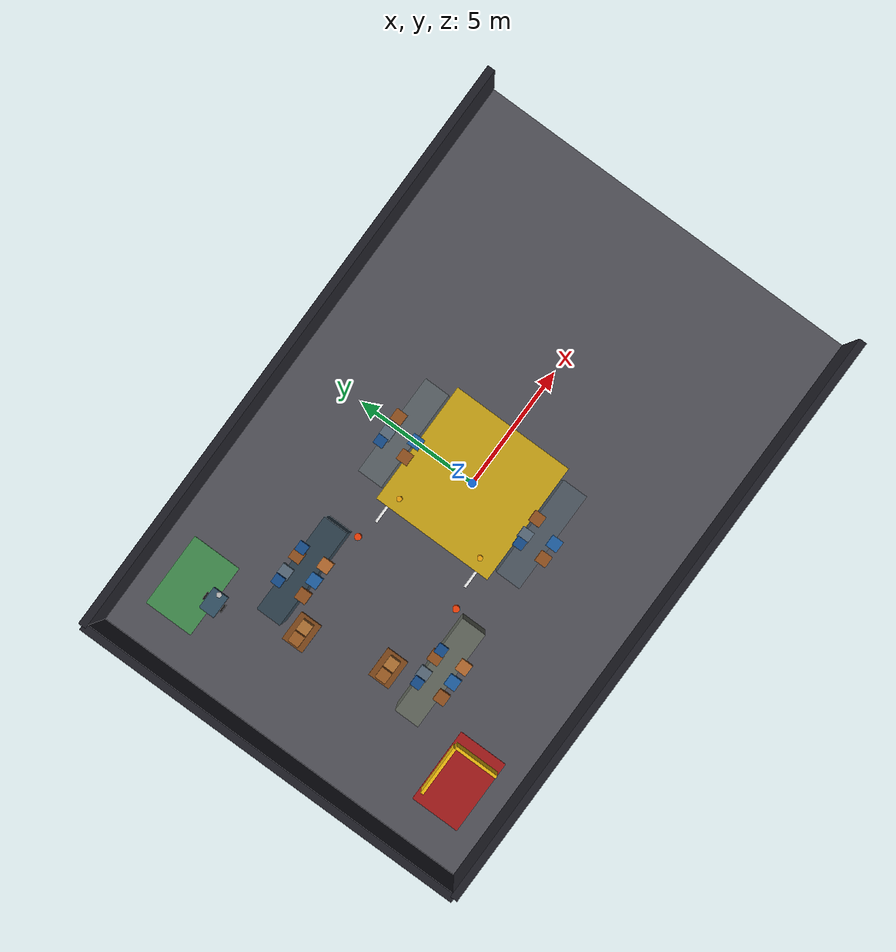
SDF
<sdf version="1.9">
 <world name="synaids_advanced_warehouse">
  <model name="warehouse_floor">
   <static>true</static>
   <pose>0 0 -0.05 0 0 0</pose>
   <link name="link">
    <collision name="collision"><geometry><box><size>24 16 0.1</size></box></geometry></collision>
    <visual name="visual">
     <geometry><box><size>24 16 0.1</size></box></geometry>
     <material>
      <ambient>0.20 0.20 0.22 1</ambient>
      <diffuse>0.32 0.32 0.35 1</diffuse>
      <specular>0.15 0.15 0.15 1</specular>
     </material>
    </visual>
   </link>
  </model>
  <model name="wall_north">
   <static>true</static>
   <pose>0 8 1.5 0 0 0</pose>
   <link name="link">
    <collision name="collision"><geometry><box><size>24 0.3 3</size></box></geometry></collision>
    <visual name="visual">
     <geometry><box><size>24 0.3 3</size></box></geometry>
     <material><ambient>0.08 0.08 0.10 1</ambient><diffuse>0.12 0.12 0.15 1</diffuse></material>
    </visual>
   </link>
  </model>
  <model name="wall_south">
   <static>true</static>
   <pose>0 -8 1.5 0 0 0</pose>
   <link name="link">
    <collision name="collision"><geometry><box><size>24 0.3 3</size></box></geometry></collision>
    <visual name="visual">
     <geometry><box><size>24 0.3 3</size></box></geometry>
     <material><ambient>0.08 0.08 0.10 1</ambient><diffuse>0.12 0.12 0.15 1</diffuse></material>
    </visual>
   </link>
  </model>
  <model name="wall_west">
   <static>true</static>
   <pose>-12 0 1.5 0 0 0</pose>
   <link name="link">
    <collision name="collision"><geometry><box><size>0.3 16 3</size></box></geometry></collision>
    <visual name="visual">
     <geometry><box><size>0.3 16 3</size></box></geometry>
     <material><ambient>0.08 0.08 0.10 1</ambient><diffuse>0.12 0.12 0.15 1</diffuse></material>
    </visual>
   </link>
  </model>
  <model name="shelf_1">
   <static>true</static>
   <pose>-6 3 1.2 0 0 0</pose>
   <link name="link">
    <collision name="collision"><geometry><box><size>4 1.0 2.4</size></box></geometry></collision>
    <visual name="visual">
     <geometry><box><size>4 1.0 2.4</size></box></geometry>
     <material><ambient>0.08 0.12 0.16 1</ambient><diffuse>0.18 0.25 0.30 1</diffuse></material>
    </visual>
   </link>
  </model>
  <model name="shelf_2">
   <static>true</static>
   <pose>0 3 1.2 0 0 0</pose>
   <link name="link">
    <collision name="collision"><geometry><box><size>4 1.0 2.4</size></box></geometry></collision>
    <visual name="visual">
     <geometry><box><size>4 1.0 2.4</size></box></geometry>
     <material><ambient>0.18 0.18 0.18 1</ambient><diffuse>0.35 0.38 0.40 1</diffuse></material>
    </visual>
   </link>
  </model>
  <model name="shelf_4">
   <static>true</static>
   <pose>-6 -3 1.2 0 0 0</pose>
   <link name="link">
    <collision name="collision"><geometry><box><size>4 1.0 2.4</size></box></geometry></collision>
    <visual name="visual">
     <geometry><box><size>4 1.0 2.4</size></box></geometry>
     <material><ambient>0.20 0.20 0.18 1</ambient><diffuse>0.38 0.40 0.36 1</diffuse></material>
    </visual>
   </link>
  </model>
  <model name="shelf_5">
   <static>true</static>
   <pose>0 -3 1.2 0 0 0</pose>
   <link name="link">
    <collision name="collision"><geometry><box><size>4 1.0 2.4</size></box></geometry></collision>
    <visual name="visual">
     <geometry><box><size>4 1.0 2.4</size></box></geometry>
     <material><ambient>0.16 0.18 0.20 1</ambient><diffuse>0.30 0.34 0.38 1</diffuse></material>
    </visual>
   </link>
  </model>
  <model name="pickup_zone">
   <static>true</static>
   <pose>-9 6 0.02 0 0 0</pose>
   <link name="link">
    <visual name="visual">
     <geometry><box><size>3 2 0.04</size></box></geometry>
     <material><ambient>0.08 0.25 0.10 1</ambient><diffuse>0.25 0.55 0.30 1</diffuse></material>
    </visual>
   </link>
  </model>
  <model name="restricted_zone">
   <static>true</static>
   <pose>-9 -6 0.02 0 0 0</pose>
   <link name="link">
    <visual name="visual">
     <geometry><box><size>3 2 0.04</size></box></geometry>
     <material><ambient>0.35 0.04 0.04 1</ambient><diffuse>0.65 0.10 0.10 1</diffuse></material>
    </visual>
   </link>
  </model>
  <model name="central_intersection">
   <static>true</static>
   <pose>0 0 0.025 0 0 0</pose>
   <link name="link">
    <visual name="visual">
     <geometry><box><size>5 5 0.05</size></box></geometry>
     <material><ambient>0.45 0.38 0.03 1</ambient><diffuse>0.80 0.65 0.08 1</diffuse></material>
    </visual>
   </link>
  </model>
  <model name="R1">
   <pose>-9 5 0.25 0 0 0</pose>
   <link name="base_link">
    <inertial><mass>12</mass><inertia><ixx>0.5</ixx><iyy>0.5</iyy><izz>0.5</izz></inertia></inertial>
    <collision name="base_collision"><geometry><box><size>0.9 0.65 0.25</size></box></geometry></collision>
    <visual name="base_visual">
     <geometry><box><size>0.9 0.65 0.25</size></box></geometry>
     <material><ambient>0.10 0.16 0.20 1</ambient><diffuse>0.20 0.32 0.40 1</diffuse></material>
    </visual>
   </link>
   <link name="left_wheel">
    <pose>0 0.38 -0.12 1.5708 0 0</pose>
    <inertial><mass>1</mass><inertia><ixx>0.02</ixx><iyy>0.02</iyy><izz>0.02</izz></inertia></inertial>
    <collision name="collision">
     <geometry><cylinder><radius>0.16</radius><length>0.08</length></cylinder></geometry>
    </collision>
    <visual name="visual">
     <geometry><cylinder><radius>0.16</radius><length>0.08</length></cylinder></geometry>
     <material><ambient>0.03 0.03 0.03 1</ambient><diffuse>0.08 0.08 0.08 1</diffuse></material>
    </visual>
   </link>
   <link name="right_wheel">
    <pose>0 -0.38 -0.12 1.5708 0 0</pose>
    <inertial><mass>1</mass><inertia><ixx>0.02</ixx><iyy>0.02</iyy><izz>0.02</izz></inertia></inertial>
    <collision name="collision">
     <geometry><cylinder><radius>0.16</radius><length>0.08</length></cylinder></geometry>
    </collision>
    <visual name="visual">
     <geometry><cylinder><radius>0.16</radius><length>0.08</length></cylinder></geometry>
     <material><ambient>0.03 0.03 0.03 1</ambient><diffuse>0.08 0.08 0.08 1</diffuse></material>
    </visual>
   </link>
   <link name="sensor">
    <pose>0.35 0 0.18 0 0 0</pose>
    <visual name="visual">
     <geometry><cylinder><radius>0.10</radius><length>0.08</length></cylinder></geometry>
     <material><ambient>0.65 0.65 0.65 1</ambient><diffuse>0.75 0.75 0.75 1</diffuse></material>
    </visual>
   </link>
   <plugin filename="gz-sim-diff-drive-system" name="gz::sim::systems::DiffDrive">
    <left_joint>left_wheel_joint</left_joint>
    <right_joint>right_wheel_joint</right_joint>
    <wheel_separation>0.76</wheel_separation>
    <wheel_radius>0.16</wheel_radius>
    <topic>/R1/cmd_vel</topic>
    <odom_topic>/R1/odom</odom_topic>
    <frame_id>odom</frame_id>
    <child_frame_id>base_link</child_frame_id>
   </plugin>
   <link name="lidar">
    <pose>0 0 0.35 0 0 0</pose>
    <sensor name="lidar_sensor" type="gpu_lidar">
     <topic>/R1/scan</topic>
     <update_rate>10</update_rate>
     <lidar>
      <scan>
       <horizontal>
        <samples>360</samples>
        <resolution>1</resolution>
        <min_angle>-3.14159</min_angle>
        <max_angle>3.14159</max_angle>
       </horizontal>
      </scan>
      <range><min>0.12</min><max>12</max><resolution>0.01</resolution></range>
     </lidar>
    </sensor>
   </link>
   <joint name="left_wheel_joint" type="revolute">
    <parent>base_link</parent>
    <child>left_wheel</child>
    <axis><xyz>0 1 0</xyz></axis>
   </joint>
   <joint name="right_wheel_joint" type="revolute">
    <parent>base_link</parent>
    <child>right_wheel</child>
    <axis><xyz>0 1 0</xyz></axis>
   </joint>
  </model>
  <model name="inventory_0">
   <static>true</static>
   <pose>-6.65 2.45 2.45 0 0 0</pose>
   <link name="link">
    <collision name="collision"><geometry><box><size>0.45 0.45 0.45</size></box></geometry></collision>
    <visual name="visual">
     <geometry><box><size>0.45 0.45 0.45</size></box></geometry>
     <material><ambient>0.58 0.32 0.12 1</ambient><diffuse>0.58 0.32 0.12 1</diffuse></material>
    </visual>
   </link>
  </model>
  <model name="inventory_1">
   <static>true</static>
   <pose>-6.0 2.45 2.45 0 0 0</pose>
   <link name="link">
    <collision name="collision"><geometry><box><size>0.45 0.45 0.45</size></box></geometry></collision>
    <visual name="visual">
     <geometry><box><size>0.45 0.45 0.45</size></box></geometry>
     <material><ambient>0.12 0.38 0.65 1</ambient><diffuse>0.12 0.38 0.65 1</diffuse></material>
    </visual>
   </link>
  </model>
  <model name="inventory_2">
   <static>true</static>
   <pose>-5.35 2.45 2.45 0 0 0</pose>
   <link name="link">
    <collision name="collision"><geometry><box><size>0.45 0.45 0.45</size></box></geometry></collision>
    <visual name="visual">
     <geometry><box><size>0.45 0.45 0.45</size></box></geometry>
     <material><ambient>0.72 0.42 0.18 1</ambient><diffuse>0.72 0.42 0.18 1</diffuse></material>
    </visual>
   </link>
  </model>
  <model name="inventory_3">
   <static>true</static>
   <pose>-6.35 3.45 2.45 0 0 0</pose>
   <link name="link">
    <collision name="collision"><geometry><box><size>0.45 0.45 0.45</size></box></geometry></collision>
    <visual name="visual">
     <geometry><box><size>0.45 0.45 0.45</size></box></geometry>
     <material><ambient>0.35 0.42 0.48 1</ambient><diffuse>0.35 0.42 0.48 1</diffuse></material>
    </visual>
   </link>
  </model>
  <model name="inventory_4">
   <static>true</static>
   <pose>-5.65 3.45 2.45 0 0 0</pose>
   <link name="link">
    <collision name="collision"><geometry><box><size>0.45 0.45 0.45</size></box></geometry></collision>
    <visual name="visual">
     <geometry><box><size>0.45 0.45 0.45</size></box></geometry>
     <material><ambient>0.58 0.32 0.12 1</ambient><diffuse>0.58 0.32 0.12 1</diffuse></material>
    </visual>
   </link>
  </model>
  <model name="bin_5">
   <static>true</static>
   <pose>-6.7 3.45 2.85 0 0 0</pose>
   <link name="link">
    <collision name="collision"><geometry><box><size>0.38 0.38 0.32</size></box></geometry></collision>
    <visual name="visual">
     <geometry><box><size>0.38 0.38 0.32</size></box></geometry>
     <material><ambient>0.08 0.30 0.55 1</ambient><diffuse>0.08 0.30 0.55 1</diffuse></material>
    </visual>
   </link>
  </model>
  <model name="bin_6">
   <static>true</static>
   <pose>-5.3 3.45 2.85 0 0 0</pose>
   <link name="link">
    <collision name="collision"><geometry><box><size>0.38 0.38 0.32</size></box></geometry></collision>
    <visual name="visual">
     <geometry><box><size>0.38 0.38 0.32</size></box></geometry>
     <material><ambient>0.08 0.30 0.55 1</ambient><diffuse>0.08 0.30 0.55 1</diffuse></material>
    </visual>
   </link>
  </model>
  <model name="inventory_7">
   <static>true</static>
   <pose>-0.65 2.45 2.45 0 0 0</pose>
   <link name="link">
    <collision name="collision"><geometry><box><size>0.45 0.45 0.45</size></box></geometry></collision>
    <visual name="visual">
     <geometry><box><size>0.45 0.45 0.45</size></box></geometry>
     <material><ambient>0.58 0.32 0.12 1</ambient><diffuse>0.58 0.32 0.12 1</diffuse></material>
    </visual>
   </link>
  </model>
  <model name="inventory_8">
   <static>true</static>
   <pose>0.0 2.45 2.45 0 0 0</pose>
   <link name="link">
    <collision name="collision"><geometry><box><size>0.45 0.45 0.45</size></box></geometry></collision>
    <visual name="visual">
     <geometry><box><size>0.45 0.45 0.45</size></box></geometry>
     <material><ambient>0.12 0.38 0.65 1</ambient><diffuse>0.12 0.38 0.65 1</diffuse></material>
    </visual>
   </link>
  </model>
  <model name="inventory_10">
   <static>true</static>
   <pose>-0.35 3.45 2.45 0 0 0</pose>
   <link name="link">
    <collision name="collision"><geometry><box><size>0.45 0.45 0.45</size></box></geometry></collision>
    <visual name="visual">
     <geometry><box><size>0.45 0.45 0.45</size></box></geometry>
     <material><ambient>0.35 0.42 0.48 1</ambient><diffuse>0.35 0.42 0.48 1</diffuse></material>
    </visual>
   </link>
  </model>
  <model name="inventory_11">
   <static>true</static>
   <pose>0.35 3.45 2.45 0 0 0</pose>
   <link name="link">
    <collision name="collision"><geometry><box><size>0.45 0.45 0.45</size></box></geometry></collision>
    <visual name="visual">
     <geometry><box><size>0.45 0.45 0.45</size></box></geometry>
     <material><ambient>0.58 0.32 0.12 1</ambient><diffuse>0.58 0.32 0.12 1</diffuse></material>
    </visual>
   </link>
  </model>
  <model name="bin_12">
   <static>true</static>
   <pose>-0.7 3.45 2.85 0 0 0</pose>
   <link name="link">
    <collision name="collision"><geometry><box><size>0.38 0.38 0.32</size></box></geometry></collision>
    <visual name="visual">
     <geometry><box><size>0.38 0.38 0.32</size></box></geometry>
     <material><ambient>0.08 0.30 0.55 1</ambient><diffuse>0.08 0.30 0.55 1</diffuse></material>
    </visual>
   </link>
  </model>
  <model name="inventory_21">
   <static>true</static>
   <pose>-6.65 -3.55 2.45 0 0 0</pose>
   <link name="link">
    <collision name="collision"><geometry><box><size>0.45 0.45 0.45</size></box></geometry></collision>
    <visual name="visual">
     <geometry><box><size>0.45 0.45 0.45</size></box></geometry>
     <material><ambient>0.58 0.32 0.12 1</ambient><diffuse>0.58 0.32 0.12 1</diffuse></material>
    </visual>
   </link>
  </model>
  <model name="inventory_22">
   <static>true</static>
   <pose>-6.0 -3.55 2.45 0 0 0</pose>
   <link name="link">
    <collision name="collision"><geometry><box><size>0.45 0.45 0.45</size></box></geometry></collision>
    <visual name="visual">
     <geometry><box><size>0.45 0.45 0.45</size></box></geometry>
     <material><ambient>0.12 0.38 0.65 1</ambient><diffuse>0.12 0.38 0.65 1</diffuse></material>
    </visual>
   </link>
  </model>
  <model name="inventory_23">
   <static>true</static>
   <pose>-5.35 -3.55 2.45 0 0 0</pose>
   <link name="link">
    <collision name="collision"><geometry><box><size>0.45 0.45 0.45</size></box></geometry></collision>
    <visual name="visual">
     <geometry><box><size>0.45 0.45 0.45</size></box></geometry>
     <material><ambient>0.72 0.42 0.18 1</ambient><diffuse>0.72 0.42 0.18 1</diffuse></material>
    </visual>
   </link>
  </model>
  <model name="inventory_24">
   <static>true</static>
   <pose>-6.35 -2.55 2.45 0 0 0</pose>
   <link name="link">
    <collision name="collision"><geometry><box><size>0.45 0.45 0.45</size></box></geometry></collision>
    <visual name="visual">
     <geometry><box><size>0.45 0.45 0.45</size></box></geometry>
     <material><ambient>0.35 0.42 0.48 1</ambient><diffuse>0.35 0.42 0.48 1</diffuse></material>
    </visual>
   </link>
  </model>
  <model name="inventory_25">
   <static>true</static>
   <pose>-5.65 -2.55 2.45 0 0 0</pose>
   <link name="link">
    <collision name="collision"><geometry><box><size>0.45 0.45 0.45</size></box></geometry></collision>
    <visual name="visual">
     <geometry><box><size>0.45 0.45 0.45</size></box></geometry>
     <material><ambient>0.58 0.32 0.12 1</ambient><diffuse>0.58 0.32 0.12 1</diffuse></material>
    </visual>
   </link>
  </model>
  <model name="bin_26">
   <static>true</static>
   <pose>-6.7 -2.55 2.85 0 0 0</pose>
   <link name="link">
    <collision name="collision"><geometry><box><size>0.38 0.38 0.32</size></box></geometry></collision>
    <visual name="visual">
     <geometry><box><size>0.38 0.38 0.32</size></box></geometry>
     <material><ambient>0.08 0.30 0.55 1</ambient><diffuse>0.08 0.30 0.55 1</diffuse></material>
    </visual>
   </link>
  </model>
  <model name="bin_27">
   <static>true</static>
   <pose>-5.3 -2.55 2.85 0 0 0</pose>
   <link name="link">
    <collision name="collision"><geometry><box><size>0.38 0.38 0.32</size></box></geometry></collision>
    <visual name="visual">
     <geometry><box><size>0.38 0.38 0.32</size></box></geometry>
     <material><ambient>0.08 0.30 0.55 1</ambient><diffuse>0.08 0.30 0.55 1</diffuse></material>
    </visual>
   </link>
  </model>
  <model name="inventory_28">
   <static>true</static>
   <pose>-0.65 -3.55 2.45 0 0 0</pose>
   <link name="link">
    <collision name="collision"><geometry><box><size>0.45 0.45 0.45</size></box></geometry></collision>
    <visual name="visual">
     <geometry><box><size>0.45 0.45 0.45</size></box></geometry>
     <material><ambient>0.58 0.32 0.12 1</ambient><diffuse>0.58 0.32 0.12 1</diffuse></material>
    </visual>
   </link>
  </model>
  <model name="inventory_29">
   <static>true</static>
   <pose>0.0 -3.55 2.45 0 0 0</pose>
   <link name="link">
    <collision name="collision"><geometry><box><size>0.45 0.45 0.45</size></box></geometry></collision>
    <visual name="visual">
     <geometry><box><size>0.45 0.45 0.45</size></box></geometry>
     <material><ambient>0.12 0.38 0.65 1</ambient><diffuse>0.12 0.38 0.65 1</diffuse></material>
    </visual>
   </link>
  </model>
  <model name="inventory_31">
   <static>true</static>
   <pose>-0.35 -2.55 2.45 0 0 0</pose>
   <link name="link">
    <collision name="collision"><geometry><box><size>0.45 0.45 0.45</size></box></geometry></collision>
    <visual name="visual">
     <geometry><box><size>0.45 0.45 0.45</size></box></geometry>
     <material><ambient>0.35 0.42 0.48 1</ambient><diffuse>0.35 0.42 0.48 1</diffuse></material>
    </visual>
   </link>
  </model>
  <model name="inventory_32">
   <static>true</static>
   <pose>0.35 -2.55 2.45 0 0 0</pose>
   <link name="link">
    <collision name="collision"><geometry><box><size>0.45 0.45 0.45</size></box></geometry></collision>
    <visual name="visual">
     <geometry><box><size>0.45 0.45 0.45</size></box></geometry>
     <material><ambient>0.58 0.32 0.12 1</ambient><diffuse>0.58 0.32 0.12 1</diffuse></material>
    </visual>
   </link>
  </model>
  <model name="bin_33">
   <static>true</static>
   <pose>-0.7 -2.55 2.85 0 0 0</pose>
   <link name="link">
    <collision name="collision"><geometry><box><size>0.38 0.38 0.32</size></box></geometry></collision>
    <visual name="visual">
     <geometry><box><size>0.38 0.38 0.32</size></box></geometry>
     <material><ambient>0.08 0.30 0.55 1</ambient><diffuse>0.08 0.30 0.55 1</diffuse></material>
    </visual>
   </link>
  </model>
  <model name="pallet_0">
   <static>true</static>
   <pose>-8.0 1.8 0.1 0 0 0</pose>
   <link name="link">
    <collision name="collision"><geometry><box><size>1.2 0.9 0.2</size></box></geometry></collision>
    <visual name="visual">
     <geometry><box><size>1.2 0.9 0.2</size></box></geometry>
     <material><ambient>0.50 0.28 0.10 1</ambient><diffuse>0.50 0.28 0.10 1</diffuse></material>
    </visual>
   </link>
  </model>
  <model name="pallet_box_0_a">
   <static>true</static>
   <pose>-8.25 1.8 0.45 0 0 0</pose>
   <link name="link">
    <collision name="collision"><geometry><box><size>0.45 0.45 0.55</size></box></geometry></collision>
    <visual name="visual">
     <geometry><box><size>0.45 0.45 0.55</size></box></geometry>
     <material><ambient>0.63 0.37 0.14 1</ambient><diffuse>0.63 0.37 0.14 1</diffuse></material>
    </visual>
   </link>
  </model>
  <model name="pallet_box_0_b">
   <static>true</static>
   <pose>-7.75 1.8 0.45 0 0 0</pose>
   <link name="link">
    <collision name="collision"><geometry><box><size>0.45 0.45 0.55</size></box></geometry></collision>
    <visual name="visual">
     <geometry><box><size>0.45 0.45 0.55</size></box></geometry>
     <material><ambient>0.70 0.45 0.20 1</ambient><diffuse>0.70 0.45 0.20 1</diffuse></material>
    </visual>
   </link>
  </model>
  <model name="pallet_1">
   <static>true</static>
   <pose>-7.2 -1.5 0.1 0 0 0</pose>
   <link name="link">
    <collision name="collision"><geometry><box><size>1.2 0.9 0.2</size></box></geometry></collision>
    <visual name="visual">
     <geometry><box><size>1.2 0.9 0.2</size></box></geometry>
     <material><ambient>0.50 0.28 0.10 1</ambient><diffuse>0.50 0.28 0.10 1</diffuse></material>
    </visual>
   </link>
  </model>
  <model name="pallet_box_1_a">
   <static>true</static>
   <pose>-7.45 -1.5 0.45 0 0 0</pose>
   <link name="link">
    <collision name="collision"><geometry><box><size>0.45 0.45 0.55</size></box></geometry></collision>
    <visual name="visual">
     <geometry><box><size>0.45 0.45 0.55</size></box></geometry>
     <material><ambient>0.63 0.37 0.14 1</ambient><diffuse>0.63 0.37 0.14 1</diffuse></material>
    </visual>
   </link>
  </model>
  <model name="pallet_box_1_b">
   <static>true</static>
   <pose>-6.95 -1.5 0.45 0 0 0</pose>
   <link name="link">
    <collision name="collision"><geometry><box><size>0.45 0.45 0.55</size></box></geometry></collision>
    <visual name="visual">
     <geometry><box><size>0.45 0.45 0.55</size></box></geometry>
     <material><ambient>0.70 0.45 0.20 1</ambient><diffuse>0.70 0.45 0.20 1</diffuse></material>
    </visual>
   </link>
  </model>
  <model name="intersection_north">
   <static>true</static>
   <pose>0 1.55 0.015 0 0 0</pose>
   <link name="link">
    <visual name="visual">
     <geometry><box><size>4.2 0.08 0.03</size></box></geometry>
     <material><ambient>0.95 0.75 0.05 1</ambient><diffuse>0.95 0.75 0.05 1</diffuse></material>
    </visual>
   </link>
  </model>
  <model name="intersection_south">
   <static>true</static>
   <pose>0 -1.55 0.015 0 0 0</pose>
   <link name="link">
    <visual name="visual">
     <geometry><box><size>4.2 0.08 0.03</size></box></geometry>
     <material><ambient>0.95 0.75 0.05 1</ambient><diffuse>0.95 0.75 0.05 1</diffuse></material>
    </visual>
   </link>
  </model>
  <model name="intersection_west">
   <static>true</static>
   <pose>-2.05 0 0.015 0 0 0</pose>
   <link name="link">
    <visual name="visual">
     <geometry><box><size>0.08 3.1 0.03</size></box></geometry>
     <material><ambient>0.95 0.75 0.05 1</ambient><diffuse>0.95 0.75 0.05 1</diffuse></material>
    </visual>
   </link>
  </model>
  <model name="stop_R1">
   <static>true</static>
   <pose>-2.6 2.0 0.02 0 0 0</pose>
   <link name="link">
    <visual name="visual">
     <geometry><box><size>1.2 0.1 0.035</size></box></geometry>
     <material><ambient>0.95 0.95 0.95 1</ambient><diffuse>0.95 0.95 0.95 1</diffuse></material>
    </visual>
   </link>
  </model>
  <model name="stop_R3">
   <static>true</static>
   <pose>-2.6 -2.0 0.02 0 0 0</pose>
   <link name="link">
    <visual name="visual">
     <geometry><box><size>1.2 0.1 0.035</size></box></geometry>
     <material><ambient>0.95 0.95 0.95 1</ambient><diffuse>0.95 0.95 0.95 1</diffuse></material>
    </visual>
   </link>
  </model>
  <model name="bollard_0">
   <static>true</static>
   <pose>-2.0 1.8 0.45 0 0 0</pose>
   <link name="link">
    <collision name="collision">
     <geometry><cylinder><radius>0.1</radius><length>0.9</length></cylinder></geometry>
    </collision>
    <visual name="visual">
     <geometry><cylinder><radius>0.1</radius><length>0.9</length></cylinder></geometry>
     <material><ambient>0.95 0.65 0.05 1</ambient><diffuse>0.95 0.65 0.05 1</diffuse></material>
    </visual>
   </link>
  </model>
  <model name="bollard_2">
   <static>true</static>
   <pose>-2.0 -1.8 0.45 0 0 0</pose>
   <link name="link">
    <collision name="collision">
     <geometry><cylinder><radius>0.1</radius><length>0.9</length></cylinder></geometry>
    </collision>
    <visual name="visual">
     <geometry><cylinder><radius>0.1</radius><length>0.9</length></cylinder></geometry>
     <material><ambient>0.95 0.65 0.05 1</ambient><diffuse>0.95 0.65 0.05 1</diffuse></material>
    </visual>
   </link>
  </model>
  <model name="safety_cone_0">
   <static>true</static>
   <pose>-4.0 2.2 0.25 0 0 0</pose>
   <link name="link">
    <collision name="collision">
     <geometry><cylinder><radius>0.13</radius><length>0.5</length></cylinder></geometry>
    </collision>
    <visual name="visual">
     <geometry><cylinder><radius>0.13</radius><length>0.5</length></cylinder></geometry>
     <material><ambient>0.95 0.25 0.03 1</ambient><diffuse>0.95 0.25 0.03 1</diffuse></material>
    </visual>
   </link>
  </model>
  <model name="safety_cone_1">
   <static>true</static>
   <pose>-4.0 -2.2 0.25 0 0 0</pose>
   <link name="link">
    <collision name="collision">
     <geometry><cylinder><radius>0.13</radius><length>0.5</length></cylinder></geometry>
    </collision>
    <visual name="visual">
     <geometry><cylinder><radius>0.13</radius><length>0.5</length></cylinder></geometry>
     <material><ambient>0.95 0.25 0.03 1</ambient><diffuse>0.95 0.25 0.03 1</diffuse></material>
    </visual>
   </link>
  </model>
  <model name="restricted_barrier_1">
   <static>true</static>
   <pose>-9 -5.1 0.55 0 0 0</pose>
   <link name="link">
    <collision name="collision"><geometry><box><size>2.0 0.12 1.1</size></box></geometry></collision>
    <visual name="visual">
     <geometry><box><size>2.0 0.12 1.1</size></box></geometry>
     <material><ambient>0.95 0.75 0.05 1</ambient><diffuse>0.95 0.75 0.05 1</diffuse></material>
    </visual>
   </link>
  </model>
  <model name="restricted_barrier_2">
   <static>true</static>
   <pose>-7.95 -6 0.55 0 0 0</pose>
   <link name="link">
    <collision name="collision"><geometry><box><size>0.12 1.8 1.1</size></box></geometry></collision>
    <visual name="visual">
     <geometry><box><size>0.12 1.8 1.1</size></box></geometry>
     <material><ambient>0.95 0.75 0.05 1</ambient><diffuse>0.95 0.75 0.05 1</diffuse></material>
    </visual>
   </link>
  </model>
 </world>
</sdf>
